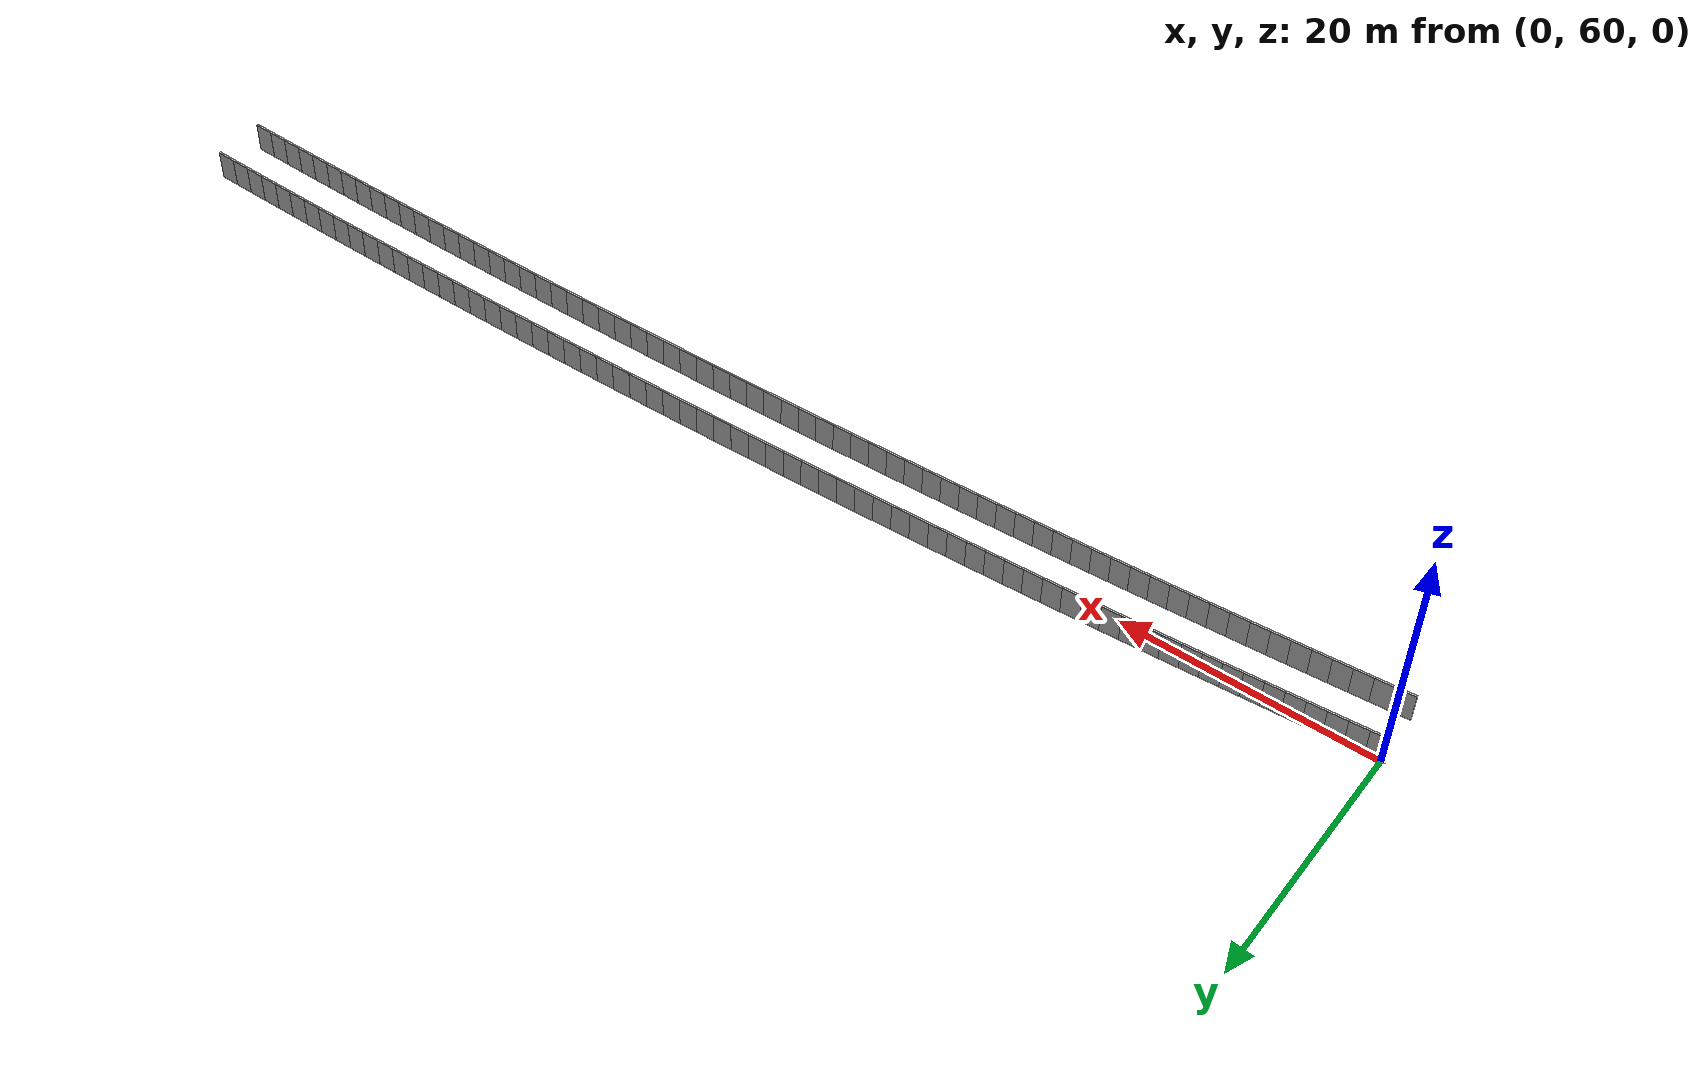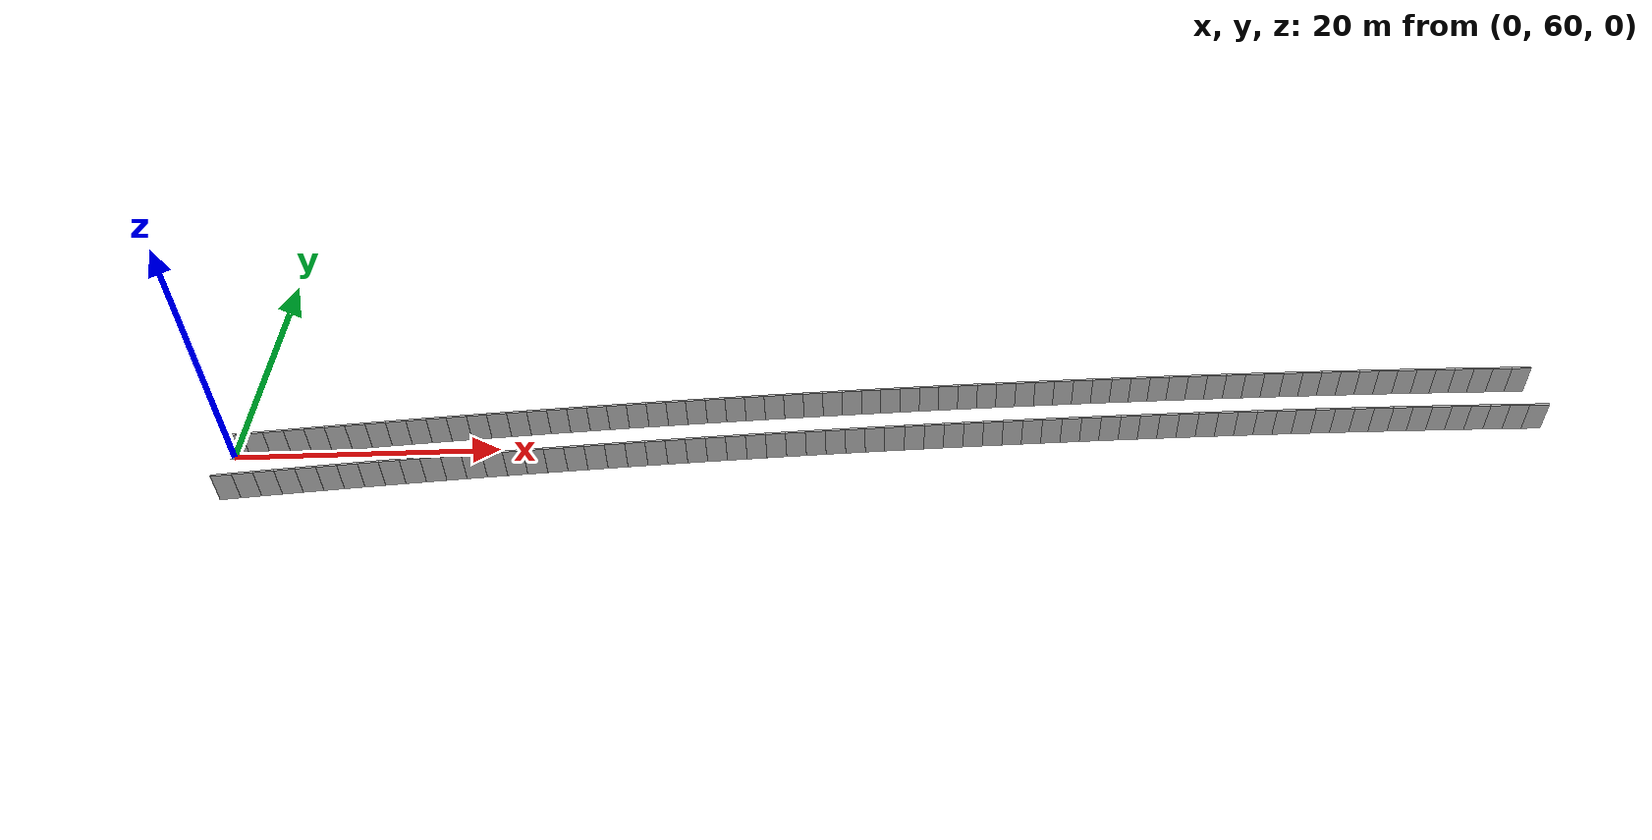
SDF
<sdf version="1.6">
 <model name="sps_1123">
  <static>1</static>
  <allow_auto_disable>0</allow_auto_disable>
  <link name="Wall2892">
   <collision name="collision"><geometry><box><size>1.49664 0.15 2.5</size></box></geometry></collision>
   <visual name="visual">
    <geometry><box><size>1.49664 0.15 2.5</size></box></geometry>
    <transparency>0.0</transparency>
   </visual>
   <pose>99.4662 59.1562 1.25 0 -0 3.12357</pose>
  </link>
  <link name="Wall2893">
   <collision name="collision"><geometry><box><size>1.49636 0.15 2.5</size></box></geometry></collision>
   <visual name="visual">
    <geometry><box><size>1.49636 0.15 2.5</size></box></geometry>
    <transparency>0.0</transparency>
   </visual>
   <pose>97.97 59.1821 1.25 0 -0 3.12503</pose>
  </link>
  <link name="Wall2894">
   <collision name="collision"><geometry><box><size>1.49657 0.15 2.5</size></box></geometry></collision>
   <visual name="visual">
    <geometry><box><size>1.49657 0.15 2.5</size></box></geometry>
    <transparency>0.0</transparency>
   </visual>
   <pose>96.4737 59.2057 1.25 0 -0 3.12662</pose>
  </link>
  <link name="Wall2895">
   <collision name="collision"><geometry><box><size>1.49659 0.15 2.5</size></box></geometry></collision>
   <visual name="visual">
    <geometry><box><size>1.49659 0.15 2.5</size></box></geometry>
    <transparency>0.0</transparency>
   </visual>
   <pose>94.9773 59.2268 1.25 0 -0 3.12834</pose>
  </link>
  <link name="Wall2896">
   <collision name="collision"><geometry><box><size>1.4965 0.15 2.5</size></box></geometry></collision>
   <visual name="visual">
    <geometry><box><size>1.4965 0.15 2.5</size></box></geometry>
    <transparency>0.0</transparency>
   </visual>
   <pose>93.4808 59.2455 1.25 0 -0 3.12985</pose>
  </link>
  <link name="Wall2897">
   <collision name="collision"><geometry><box><size>1.49648 0.15 2.5</size></box></geometry></collision>
   <visual name="visual">
    <geometry><box><size>1.49648 0.15 2.5</size></box></geometry>
    <transparency>0.0</transparency>
   </visual>
   <pose>91.9844 59.2619 1.25 0 -0 3.13144</pose>
  </link>
  <link name="Wall2898">
   <collision name="collision"><geometry><box><size>1.49645 0.15 2.5</size></box></geometry></collision>
   <visual name="visual">
    <geometry><box><size>1.49645 0.15 2.5</size></box></geometry>
    <transparency>0.0</transparency>
   </visual>
   <pose>90.488 59.2759 1.25 0 -0 3.13303</pose>
  </link>
  <link name="Wall2899">
   <collision name="collision"><geometry><box><size>1.49643 0.15 2.5</size></box></geometry></collision>
   <visual name="visual">
    <geometry><box><size>1.49643 0.15 2.5</size></box></geometry>
    <transparency>0.0</transparency>
   </visual>
   <pose>88.9916 59.2875 1.25 0 -0 3.13466</pose>
  </link>
  <link name="Wall2900">
   <collision name="collision"><geometry><box><size>1.4966 0.15 2.5</size></box></geometry></collision>
   <visual name="visual">
    <geometry><box><size>1.4966 0.15 2.5</size></box></geometry>
    <transparency>0.0</transparency>
   </visual>
   <pose>87.4951 59.2968 1.25 0 -0 3.13609</pose>
  </link>
  <link name="Wall2901">
   <collision name="collision"><geometry><box><size>1.49641 0.15 2.5</size></box></geometry></collision>
   <visual name="visual">
    <geometry><box><size>1.49641 0.15 2.5</size></box></geometry>
    <transparency>0.0</transparency>
   </visual>
   <pose>85.9986 59.3037 1.25 0 -0 3.13788</pose>
  </link>
  <link name="Wall2902">
   <collision name="collision"><geometry><box><size>1.4964 0.15 2.5</size></box></geometry></collision>
   <visual name="visual">
    <geometry><box><size>1.4964 0.15 2.5</size></box></geometry>
    <transparency>0.0</transparency>
   </visual>
   <pose>84.5023 59.3082 1.25 0 -0 3.13931</pose>
  </link>
  <link name="Wall2903">
   <collision name="collision"><geometry><box><size>1.49658 0.15 2.5</size></box></geometry></collision>
   <visual name="visual">
    <geometry><box><size>1.49658 0.15 2.5</size></box></geometry>
    <transparency>0.0</transparency>
   </visual>
   <pose>83.0058 59.3104 1.25 0 -0 3.14094</pose>
  </link>
  <link name="Wall2904">
   <collision name="collision"><geometry><box><size>1.4964 0.15 2.5</size></box></geometry></collision>
   <visual name="visual">
    <geometry><box><size>1.4964 0.15 2.5</size></box></geometry>
    <transparency>0.0</transparency>
   </visual>
   <pose>81.5093 59.3103 1.25 0 0 -3.14082</pose>
  </link>
  <link name="Wall2905">
   <collision name="collision"><geometry><box><size>1.49665 0.15 2.5</size></box></geometry></collision>
   <visual name="visual">
    <geometry><box><size>1.49665 0.15 2.5</size></box></geometry>
    <transparency>0.0</transparency>
   </visual>
   <pose>80.0127 59.3078 1.25 0 0 -3.13906</pose>
  </link>
  <link name="Wall2906">
   <collision name="collision"><geometry><box><size>1.49659 0.15 2.5</size></box></geometry></collision>
   <visual name="visual">
    <geometry><box><size>1.49659 0.15 2.5</size></box></geometry>
    <transparency>0.0</transparency>
   </visual>
   <pose>78.5161 59.3028 1.25 0 0 -3.13743</pose>
  </link>
  <link name="Wall2907">
   <collision name="collision"><geometry><box><size>1.49642 0.15 2.5</size></box></geometry></collision>
   <visual name="visual">
    <geometry><box><size>1.49642 0.15 2.5</size></box></geometry>
    <transparency>0.0</transparency>
   </visual>
   <pose>77.0196 59.2955 1.25 0 0 -3.13596</pose>
  </link>
  <link name="Wall2908">
   <collision name="collision"><geometry><box><size>1.49644 0.15 2.5</size></box></geometry></collision>
   <visual name="visual">
    <geometry><box><size>1.49644 0.15 2.5</size></box></geometry>
    <transparency>0.0</transparency>
   </visual>
   <pose>75.5232 59.2858 1.25 0 0 -3.13425</pose>
  </link>
  <link name="Wall2909">
   <collision name="collision"><geometry><box><size>1.49664 0.15 2.5</size></box></geometry></collision>
   <visual name="visual">
    <geometry><box><size>1.49664 0.15 2.5</size></box></geometry>
    <transparency>0.0</transparency>
   </visual>
   <pose>74.0268 59.2737 1.25 0 0 -3.13278</pose>
  </link>
  <link name="Wall2910">
   <collision name="collision"><geometry><box><size>1.49648 0.15 2.5</size></box></geometry></collision>
   <visual name="visual">
    <geometry><box><size>1.49648 0.15 2.5</size></box></geometry>
    <transparency>0.0</transparency>
   </visual>
   <pose>72.5303 59.2593 1.25 0 0 -3.13115</pose>
  </link>
  <link name="Wall2911">
   <collision name="collision"><geometry><box><size>1.49651 0.15 2.5</size></box></geometry></collision>
   <visual name="visual">
    <geometry><box><size>1.49651 0.15 2.5</size></box></geometry>
    <transparency>0.0</transparency>
   </visual>
   <pose>71.0339 59.2425 1.25 0 0 -3.12956</pose>
  </link>
  <link name="Wall2912">
   <collision name="collision"><geometry><box><size>1.49635 0.15 2.5</size></box></geometry></collision>
   <visual name="visual">
    <geometry><box><size>1.49635 0.15 2.5</size></box></geometry>
    <transparency>0.0</transparency>
   </visual>
   <pose>69.5376 59.2233 1.25 0 0 -3.12797</pose>
  </link>
  <link name="Wall2913">
   <collision name="collision"><geometry><box><size>1.49657 0.15 2.5</size></box></geometry></collision>
   <visual name="visual">
    <geometry><box><size>1.49657 0.15 2.5</size></box></geometry>
    <transparency>0.0</transparency>
   </visual>
   <pose>68.0413 59.2017 1.25 0 0 -3.12638</pose>
  </link>
  <link name="Wall2914">
   <collision name="collision"><geometry><box><size>1.49661 0.15 2.5</size></box></geometry></collision>
   <visual name="visual">
    <geometry><box><size>1.49661 0.15 2.5</size></box></geometry>
    <transparency>0.0</transparency>
   </visual>
   <pose>66.5449 59.1778 1.25 0 0 -3.12487</pose>
  </link>
  <link name="Wall2915">
   <collision name="collision"><geometry><box><size>1.49647 0.15 2.5</size></box></geometry></collision>
   <visual name="visual">
    <geometry><box><size>1.49647 0.15 2.5</size></box></geometry>
    <transparency>0.0</transparency>
   </visual>
   <pose>65.0485 59.1515 1.25 0 0 -3.12316</pose>
  </link>
  <link name="Wall2916">
   <collision name="collision"><geometry><box><size>1.49645 0.15 2.5</size></box></geometry></collision>
   <visual name="visual">
    <geometry><box><size>1.49645 0.15 2.5</size></box></geometry>
    <transparency>0.0</transparency>
   </visual>
   <pose>63.5524 59.1228 1.25 0 0 -3.12165</pose>
  </link>
  <link name="Wall2917">
   <collision name="collision"><geometry><box><size>1.49656 0.15 2.5</size></box></geometry></collision>
   <visual name="visual">
    <geometry><box><size>1.49656 0.15 2.5</size></box></geometry>
    <transparency>0.0</transparency>
   </visual>
   <pose>62.0562 59.0918 1.25 0 0 -3.1201</pose>
  </link>
  <link name="Wall2918">
   <collision name="collision"><geometry><box><size>1.49643 0.15 2.5</size></box></geometry></collision>
   <visual name="visual">
    <geometry><box><size>1.49643 0.15 2.5</size></box></geometry>
    <transparency>0.0</transparency>
   </visual>
   <pose>60.5601 59.0584 1.25 0 0 -3.11846</pose>
  </link>
  <link name="Wall2919">
   <collision name="collision"><geometry><box><size>1.49643 0.15 2.5</size></box></geometry></collision>
   <visual name="visual">
    <geometry><box><size>1.49643 0.15 2.5</size></box></geometry>
    <transparency>0.0</transparency>
   </visual>
   <pose>59.064 59.0226 1.25 0 0 -3.11687</pose>
  </link>
  <link name="Wall2920">
   <collision name="collision"><geometry><box><size>1.49655 0.15 2.5</size></box></geometry></collision>
   <visual name="visual">
    <geometry><box><size>1.49655 0.15 2.5</size></box></geometry>
    <transparency>0.0</transparency>
   </visual>
   <pose>57.568 58.9845 1.25 0 0 -3.11541</pose>
  </link>
  <link name="Wall2921">
   <collision name="collision"><geometry><box><size>1.49637 0.15 2.5</size></box></geometry></collision>
   <visual name="visual">
    <geometry><box><size>1.49637 0.15 2.5</size></box></geometry>
    <transparency>0.0</transparency>
   </visual>
   <pose>56.0721 58.9441 1.25 0 0 -3.11377</pose>
  </link>
  <link name="Wall2922">
   <collision name="collision"><geometry><box><size>1.49644 0.15 2.5</size></box></geometry></collision>
   <visual name="visual">
    <geometry><box><size>1.49644 0.15 2.5</size></box></geometry>
    <transparency>0.0</transparency>
   </visual>
   <pose>54.5763 58.9013 1.25 0 0 -3.11218</pose>
  </link>
  <link name="Wall2923">
   <collision name="collision"><geometry><box><size>1.49651 0.15 2.5</size></box></geometry></collision>
   <visual name="visual">
    <geometry><box><size>1.49651 0.15 2.5</size></box></geometry>
    <transparency>0.0</transparency>
   </visual>
   <pose>53.0806 58.856 1.25 0 0 -3.11047</pose>
  </link>
  <link name="Wall2924">
   <collision name="collision"><geometry><box><size>1.49659 0.15 2.5</size></box></geometry></collision>
   <visual name="visual">
    <geometry><box><size>1.49659 0.15 2.5</size></box></geometry>
    <transparency>0.0</transparency>
   </visual>
   <pose>51.5848 58.8083 1.25 0 0 -3.10896</pose>
  </link>
  <link name="Wall2925">
   <collision name="collision"><geometry><box><size>1.49673 0.15 2.5</size></box></geometry></collision>
   <visual name="visual">
    <geometry><box><size>1.49673 0.15 2.5</size></box></geometry>
    <transparency>0.0</transparency>
   </visual>
   <pose>50.089 58.7583 1.25 0 0 -3.10737</pose>
  </link>
  <link name="Wall2926">
   <collision name="collision"><geometry><box><size>1.49631 0.15 2.5</size></box></geometry></collision>
   <visual name="visual">
    <geometry><box><size>1.49631 0.15 2.5</size></box></geometry>
    <transparency>0.0</transparency>
   </visual>
   <pose>48.5933 58.706 1.25 0 0 -3.10589</pose>
  </link>
  <link name="Wall2927">
   <collision name="collision"><geometry><box><size>1.49647 0.15 2.5</size></box></geometry></collision>
   <visual name="visual">
    <geometry><box><size>1.49647 0.15 2.5</size></box></geometry>
    <transparency>0.0</transparency>
   </visual>
   <pose>47.098 58.6513 1.25 0 0 -3.10418</pose>
  </link>
  <link name="Wall2928">
   <collision name="collision"><geometry><box><size>1.49649 0.15 2.5</size></box></geometry></collision>
   <visual name="visual">
    <geometry><box><size>1.49649 0.15 2.5</size></box></geometry>
    <transparency>0.0</transparency>
   </visual>
   <pose>45.6026 58.5942 1.25 0 0 -3.10267</pose>
  </link>
  <link name="Wall2929">
   <collision name="collision"><geometry><box><size>1.49647 0.15 2.5</size></box></geometry></collision>
   <visual name="visual">
    <geometry><box><size>1.49647 0.15 2.5</size></box></geometry>
    <transparency>0.0</transparency>
   </visual>
   <pose>44.1073 58.5348 1.25 0 0 -3.10108</pose>
  </link>
  <link name="Wall2930">
   <collision name="collision"><geometry><box><size>1.4965 0.15 2.5</size></box></geometry></collision>
   <visual name="visual">
    <geometry><box><size>1.4965 0.15 2.5</size></box></geometry>
    <transparency>0.0</transparency>
   </visual>
   <pose>42.6121 58.473 1.25 0 0 -3.09949</pose>
  </link>
  <link name="Wall2931">
   <collision name="collision"><geometry><box><size>1.49642 0.15 2.5</size></box></geometry></collision>
   <visual name="visual">
    <geometry><box><size>1.49642 0.15 2.5</size></box></geometry>
    <transparency>0.0</transparency>
   </visual>
   <pose>41.117 58.4088 1.25 0 0 -3.0979</pose>
  </link>
  <link name="Wall2932">
   <collision name="collision"><geometry><box><size>1.49653 0.15 2.5</size></box></geometry></collision>
   <visual name="visual">
    <geometry><box><size>1.49653 0.15 2.5</size></box></geometry>
    <transparency>0.0</transparency>
   </visual>
   <pose>39.622 58.3422 1.25 0 0 -3.09627</pose>
  </link>
  <link name="Wall2933">
   <collision name="collision"><geometry><box><size>1.49664 0.15 2.5</size></box></geometry></collision>
   <visual name="visual">
    <geometry><box><size>1.49664 0.15 2.5</size></box></geometry>
    <transparency>0.0</transparency>
   </visual>
   <pose>38.127 58.2732 1.25 0 0 -3.09468</pose>
  </link>
  <link name="Wall2934">
   <collision name="collision"><geometry><box><size>1.49638 0.15 2.5</size></box></geometry></collision>
   <visual name="visual">
    <geometry><box><size>1.49638 0.15 2.5</size></box></geometry>
    <transparency>0.0</transparency>
   </visual>
   <pose>36.6322 58.2019 1.25 0 0 -3.09316</pose>
  </link>
  <link name="Wall2935">
   <collision name="collision"><geometry><box><size>1.49668 0.15 2.5</size></box></geometry></collision>
   <visual name="visual">
    <geometry><box><size>1.49668 0.15 2.5</size></box></geometry>
    <transparency>0.0</transparency>
   </visual>
   <pose>35.1374 58.1283 1.25 0 0 -3.09162</pose>
  </link>
  <link name="Wall2936">
   <collision name="collision"><geometry><box><size>1.49638 0.15 2.5</size></box></geometry></collision>
   <visual name="visual">
    <geometry><box><size>1.49638 0.15 2.5</size></box></geometry>
    <transparency>0.0</transparency>
   </visual>
   <pose>33.6428 58.0523 1.25 0 0 -3.08997</pose>
  </link>
  <link name="Wall2937">
   <collision name="collision"><geometry><box><size>1.4965 0.15 2.5</size></box></geometry></collision>
   <visual name="visual">
    <geometry><box><size>1.4965 0.15 2.5</size></box></geometry>
    <transparency>0.0</transparency>
   </visual>
   <pose>32.1485 57.9739 1.25 0 0 -3.08838</pose>
  </link>
  <link name="Wall2938">
   <collision name="collision"><geometry><box><size>1.49663 0.15 2.5</size></box></geometry></collision>
   <visual name="visual">
    <geometry><box><size>1.49663 0.15 2.5</size></box></geometry>
    <transparency>0.0</transparency>
   </visual>
   <pose>30.6541 57.8931 1.25 0 0 -3.08675</pose>
  </link>
  <link name="Wall2939">
   <collision name="collision"><geometry><box><size>1.4964 0.15 2.5</size></box></geometry></collision>
   <visual name="visual">
    <geometry><box><size>1.4964 0.15 2.5</size></box></geometry>
    <transparency>0.0</transparency>
   </visual>
   <pose>29.1599 57.8099 1.25 0 0 -3.08519</pose>
  </link>
  <link name="Wall2940">
   <collision name="collision"><geometry><box><size>1.49653 0.15 2.5</size></box></geometry></collision>
   <visual name="visual">
    <geometry><box><size>1.49653 0.15 2.5</size></box></geometry>
    <transparency>0.0</transparency>
   </visual>
   <pose>27.6659 57.7244 1.25 0 0 -3.08369</pose>
  </link>
  <link name="Wall2941">
   <collision name="collision"><geometry><box><size>1.49644 0.15 2.5</size></box></geometry></collision>
   <visual name="visual">
    <geometry><box><size>1.49644 0.15 2.5</size></box></geometry>
    <transparency>0.0</transparency>
   </visual>
   <pose>26.172 57.6365 1.25 0 0 -3.08193</pose>
  </link>
  <link name="Wall2942">
   <collision name="collision"><geometry><box><size>1.49662 0.15 2.5</size></box></geometry></collision>
   <visual name="visual">
    <geometry><box><size>1.49662 0.15 2.5</size></box></geometry>
    <transparency>0.0</transparency>
   </visual>
   <pose>24.6782 57.5463 1.25 0 0 -3.08063</pose>
  </link>
  <link name="Wall2943">
   <collision name="collision"><geometry><box><size>1.49635 0.15 2.5</size></box></geometry></collision>
   <visual name="visual">
    <geometry><box><size>1.49635 0.15 2.5</size></box></geometry>
    <transparency>0.0</transparency>
   </visual>
   <pose>23.1845 57.4538 1.25 0 0 -3.07886</pose>
  </link>
  <link name="Wall2944">
   <collision name="collision"><geometry><box><size>1.49644 0.15 2.5</size></box></geometry></collision>
   <visual name="visual">
    <geometry><box><size>1.49644 0.15 2.5</size></box></geometry>
    <transparency>0.0</transparency>
   </visual>
   <pose>21.6912 57.3588 1.25 0 0 -3.07727</pose>
  </link>
  <link name="Wall2945">
   <collision name="collision"><geometry><box><size>1.49648 0.15 2.5</size></box></geometry></collision>
   <visual name="visual">
    <geometry><box><size>1.49648 0.15 2.5</size></box></geometry>
    <transparency>0.0</transparency>
   </visual>
   <pose>20.1979 57.2614 1.25 0 0 -3.07568</pose>
  </link>
  <link name="Wall2946">
   <collision name="collision"><geometry><box><size>1.49663 0.15 2.5</size></box></geometry></collision>
   <visual name="visual">
    <geometry><box><size>1.49663 0.15 2.5</size></box></geometry>
    <transparency>0.0</transparency>
   </visual>
   <pose>18.7046 57.1617 1.25 0 0 -3.07417</pose>
  </link>
  <link name="Wall2947">
   <collision name="collision"><geometry><box><size>1.49637 0.15 2.5</size></box></geometry></collision>
   <visual name="visual">
    <geometry><box><size>1.49637 0.15 2.5</size></box></geometry>
    <transparency>0.0</transparency>
   </visual>
   <pose>17.2116 57.0596 1.25 0 0 -3.07244</pose>
  </link>
  <link name="Wall2948">
   <collision name="collision"><geometry><box><size>1.49653 0.15 2.5</size></box></geometry></collision>
   <visual name="visual">
    <geometry><box><size>1.49653 0.15 2.5</size></box></geometry>
    <transparency>0.0</transparency>
   </visual>
   <pose>15.7188 56.9551 1.25 0 0 -3.07098</pose>
  </link>
  <link name="Wall2949">
   <collision name="collision"><geometry><box><size>1.49672 0.15 2.5</size></box></geometry></collision>
   <visual name="visual">
    <geometry><box><size>1.49672 0.15 2.5</size></box></geometry>
    <transparency>0.0</transparency>
   </visual>
   <pose>14.226 56.8482 1.25 0 0 -3.06923</pose>
  </link>
  <link name="Wall2950">
   <collision name="collision"><geometry><box><size>1.49643 0.15 2.5</size></box></geometry></collision>
   <visual name="visual">
    <geometry><box><size>1.49643 0.15 2.5</size></box></geometry>
    <transparency>0.0</transparency>
   </visual>
   <pose>12.7335 56.739 1.25 0 0 -3.06791</pose>
  </link>
  <link name="Wall2951">
   <collision name="collision"><geometry><box><size>1.49643 0.15 2.5</size></box></geometry></collision>
   <visual name="visual">
    <geometry><box><size>1.49643 0.15 2.5</size></box></geometry>
    <transparency>0.0</transparency>
   </visual>
   <pose>11.2412 56.6276 1.25 0 0 -3.06627</pose>
  </link>
  <link name="Wall2952">
   <collision name="collision"><geometry><box><size>1.49643 0.15 2.5</size></box></geometry></collision>
   <visual name="visual">
    <geometry><box><size>1.49643 0.15 2.5</size></box></geometry>
    <transparency>0.0</transparency>
   </visual>
   <pose>9.74908 56.5138 1.25 0 0 -3.06467</pose>
  </link>
  <link name="Wall2953">
   <collision name="collision"><geometry><box><size>1.49644 0.15 2.5</size></box></geometry></collision>
   <visual name="visual">
    <geometry><box><size>1.49644 0.15 2.5</size></box></geometry>
    <transparency>0.0</transparency>
   </visual>
   <pose>8.25716 56.3976 1.25 0 0 -3.06304</pose>
  </link>
  <link name="Wall2954">
   <collision name="collision"><geometry><box><size>1.49664 0.15 2.5</size></box></geometry></collision>
   <visual name="visual">
    <geometry><box><size>1.49664 0.15 2.5</size></box></geometry>
    <transparency>0.0</transparency>
   </visual>
   <pose>6.76534 56.2789 1.25 0 0 -3.06133</pose>
  </link>
  <link name="Wall2955">
   <collision name="collision"><geometry><box><size>1.49657 0.15 2.5</size></box></geometry></collision>
   <visual name="visual">
    <geometry><box><size>1.49657 0.15 2.5</size></box></geometry>
    <transparency>0.0</transparency>
   </visual>
   <pose>5.27364 56.1578 1.25 0 0 -3.05985</pose>
  </link>
  <link name="Wall2956">
   <collision name="collision"><geometry><box><size>1.49639 0.15 2.5</size></box></geometry></collision>
   <visual name="visual">
    <geometry><box><size>1.49639 0.15 2.5</size></box></geometry>
    <transparency>0.0</transparency>
   </visual>
   <pose>3.78225 56.0345 1.25 0 0 -3.05837</pose>
  </link>
  <link name="Wall2957">
   <collision name="collision"><geometry><box><size>1.49661 0.15 2.5</size></box></geometry></collision>
   <visual name="visual">
    <geometry><box><size>1.49661 0.15 2.5</size></box></geometry>
    <transparency>0.0</transparency>
   </visual>
   <pose>2.29104 55.9088 1.25 0 0 -3.05662</pose>
  </link>
  <link name="Wall2958">
   <collision name="collision"><geometry><box><size>1.49637 0.15 2.5</size></box></geometry></collision>
   <visual name="visual">
    <geometry><box><size>1.49637 0.15 2.5</size></box></geometry>
    <transparency>0.0</transparency>
   </visual>
   <pose>0.800041 55.7807 1.25 0 0 -3.05514</pose>
  </link>
  <link name="Wall5503">
   <collision name="collision"><geometry><box><size>1.50305 0.15 2.5</size></box></geometry></collision>
   <visual name="visual">
    <geometry><box><size>1.50305 0.15 2.5</size></box></geometry>
    <transparency>0.0</transparency>
   </visual>
   <pose>99.5388 63.2951 1.25 0 -0 3.12352</pose>
  </link>
  <link name="Wall5504">
   <collision name="collision"><geometry><box><size>1.50301 0.15 2.5</size></box></geometry></collision>
   <visual name="visual">
    <geometry><box><size>1.50301 0.15 2.5</size></box></geometry>
    <transparency>0.0</transparency>
   </visual>
   <pose>98.036 63.3211 1.25 0 -0 3.12506</pose>
  </link>
  <link name="Wall5505">
   <collision name="collision"><geometry><box><size>1.50316 0.15 2.5</size></box></geometry></collision>
   <visual name="visual">
    <geometry><box><size>1.50316 0.15 2.5</size></box></geometry>
    <transparency>0.0</transparency>
   </visual>
   <pose>96.5331 63.3448 1.25 0 -0 3.12657</pose>
  </link>
  <link name="Wall5506">
   <collision name="collision"><geometry><box><size>1.50294 0.15 2.5</size></box></geometry></collision>
   <visual name="visual">
    <geometry><box><size>1.50294 0.15 2.5</size></box></geometry>
    <transparency>0.0</transparency>
   </visual>
   <pose>95.0302 63.3661 1.25 0 -0 3.12827</pose>
  </link>
  <link name="Wall5507">
   <collision name="collision"><geometry><box><size>1.50309 0.15 2.5</size></box></geometry></collision>
   <visual name="visual">
    <geometry><box><size>1.50309 0.15 2.5</size></box></geometry>
    <transparency>0.0</transparency>
   </visual>
   <pose>93.5273 63.3849 1.25 0 -0 3.1299</pose>
  </link>
  <link name="Wall5508">
   <collision name="collision"><geometry><box><size>1.50307 0.15 2.5</size></box></geometry></collision>
   <visual name="visual">
    <geometry><box><size>1.50307 0.15 2.5</size></box></geometry>
    <transparency>0.0</transparency>
   </visual>
   <pose>92.0243 63.4013 1.25 0 -0 3.13148</pose>
  </link>
  <link name="Wall5509">
   <collision name="collision"><geometry><box><size>1.50305 0.15 2.5</size></box></geometry></collision>
   <visual name="visual">
    <geometry><box><size>1.50305 0.15 2.5</size></box></geometry>
    <transparency>0.0</transparency>
   </visual>
   <pose>90.5214 63.4154 1.25 0 -0 3.13294</pose>
  </link>
  <link name="Wall5510">
   <collision name="collision"><geometry><box><size>1.50303 0.15 2.5</size></box></geometry></collision>
   <visual name="visual">
    <geometry><box><size>1.50303 0.15 2.5</size></box></geometry>
    <transparency>0.0</transparency>
   </visual>
   <pose>89.0184 63.4271 1.25 0 -0 3.13469</pose>
  </link>
  <link name="Wall5511">
   <collision name="collision"><geometry><box><size>1.50301 0.15 2.5</size></box></geometry></collision>
   <visual name="visual">
    <geometry><box><size>1.50301 0.15 2.5</size></box></geometry>
    <transparency>0.0</transparency>
   </visual>
   <pose>87.5154 63.4364 1.25 0 -0 3.13611</pose>
  </link>
  <link name="Wall5512">
   <collision name="collision"><geometry><box><size>1.50325 0.15 2.5</size></box></geometry></collision>
   <visual name="visual">
    <geometry><box><size>1.50325 0.15 2.5</size></box></geometry>
    <transparency>0.0</transparency>
   </visual>
   <pose>86.0123 63.4434 1.25 0 -0 3.13774</pose>
  </link>
  <link name="Wall5513">
   <collision name="collision"><geometry><box><size>1.50299 0.15 2.5</size></box></geometry></collision>
   <visual name="visual">
    <geometry><box><size>1.50299 0.15 2.5</size></box></geometry>
    <transparency>0.0</transparency>
   </visual>
   <pose>84.5091 63.448 1.25 0 -0 3.13932</pose>
  </link>
  <link name="Wall5514">
   <collision name="collision"><geometry><box><size>1.50299 0.15 2.5</size></box></geometry></collision>
   <visual name="visual">
    <geometry><box><size>1.50299 0.15 2.5</size></box></geometry>
    <transparency>0.0</transparency>
   </visual>
   <pose>83.0062 63.4502 1.25 0 -0 3.14094</pose>
  </link>
  <link name="Wall5515">
   <collision name="collision"><geometry><box><size>1.50324 0.15 2.5</size></box></geometry></collision>
   <visual name="visual">
    <geometry><box><size>1.50324 0.15 2.5</size></box></geometry>
    <transparency>0.0</transparency>
   </visual>
   <pose>81.503 63.4499 1.25 0 0 -3.14054</pose>
  </link>
  <link name="Wall5516">
   <collision name="collision"><geometry><box><size>1.503 0.15 2.5</size></box></geometry></collision>
   <visual name="visual">
    <geometry><box><size>1.503 0.15 2.5</size></box></geometry>
    <transparency>0.0</transparency>
   </visual>
   <pose>79.9999 63.4473 1.25 0 0 -3.1392</pose>
  </link>
  <link name="Wall5517">
   <collision name="collision"><geometry><box><size>1.503 0.15 2.5</size></box></geometry></collision>
   <visual name="visual">
    <geometry><box><size>1.503 0.15 2.5</size></box></geometry>
    <transparency>0.0</transparency>
   </visual>
   <pose>78.4969 63.4424 1.25 0 0 -3.13745</pose>
  </link>
  <link name="Wall5518">
   <collision name="collision"><geometry><box><size>1.5032 0.15 2.5</size></box></geometry></collision>
   <visual name="visual">
    <geometry><box><size>1.5032 0.15 2.5</size></box></geometry>
    <transparency>0.0</transparency>
   </visual>
   <pose>76.9939 63.435 1.25 0 0 -3.13587</pose>
  </link>
  <link name="Wall5519">
   <collision name="collision"><geometry><box><size>1.50303 0.15 2.5</size></box></geometry></collision>
   <visual name="visual">
    <geometry><box><size>1.50303 0.15 2.5</size></box></geometry>
    <transparency>0.0</transparency>
   </visual>
   <pose>75.4908 63.4252 1.25 0 0 -3.13428</pose>
  </link>
  <link name="Wall5520">
   <collision name="collision"><geometry><box><size>1.50311 0.15 2.5</size></box></geometry></collision>
   <visual name="visual">
    <geometry><box><size>1.50311 0.15 2.5</size></box></geometry>
    <transparency>0.0</transparency>
   </visual>
   <pose>73.9878 63.413 1.25 0 0 -3.13266</pose>
  </link>
  <link name="Wall5521">
   <collision name="collision"><geometry><box><size>1.50307 0.15 2.5</size></box></geometry></collision>
   <visual name="visual">
    <geometry><box><size>1.50307 0.15 2.5</size></box></geometry>
    <transparency>0.0</transparency>
   </visual>
   <pose>72.4847 63.3985 1.25 0 0 -3.13124</pose>
  </link>
  <link name="Wall5522">
   <collision name="collision"><geometry><box><size>1.5031 0.15 2.5</size></box></geometry></collision>
   <visual name="visual">
    <geometry><box><size>1.5031 0.15 2.5</size></box></geometry>
    <transparency>0.0</transparency>
   </visual>
   <pose>70.9817 63.3817 1.25 0 0 -3.12961</pose>
  </link>
  <link name="Wall5523">
   <collision name="collision"><geometry><box><size>1.50313 0.15 2.5</size></box></geometry></collision>
   <visual name="visual">
    <geometry><box><size>1.50313 0.15 2.5</size></box></geometry>
    <transparency>0.0</transparency>
   </visual>
   <pose>69.4788 63.3624 1.25 0 0 -3.12787</pose>
  </link>
  <link name="Wall5524">
   <collision name="collision"><geometry><box><size>1.50298 0.15 2.5</size></box></geometry></collision>
   <visual name="visual">
    <geometry><box><size>1.50298 0.15 2.5</size></box></geometry>
    <transparency>0.0</transparency>
   </visual>
   <pose>67.9759 63.3407 1.25 0 0 -3.12644</pose>
  </link>
  <link name="Wall5525">
   <collision name="collision"><geometry><box><size>1.5032 0.15 2.5</size></box></geometry></collision>
   <visual name="visual">
    <geometry><box><size>1.5032 0.15 2.5</size></box></geometry>
    <transparency>0.0</transparency>
   </visual>
   <pose>66.473 63.3167 1.25 0 0 -3.12482</pose>
  </link>
  <link name="Wall5526">
   <collision name="collision"><geometry><box><size>1.50306 0.15 2.5</size></box></geometry></collision>
   <visual name="visual">
    <geometry><box><size>1.50306 0.15 2.5</size></box></geometry>
    <transparency>0.0</transparency>
   </visual>
   <pose>64.9701 63.2903 1.25 0 0 -3.12324</pose>
  </link>
  <link name="Wall5527">
   <collision name="collision"><geometry><box><size>1.50311 0.15 2.5</size></box></geometry></collision>
   <visual name="visual">
    <geometry><box><size>1.50311 0.15 2.5</size></box></geometry>
    <transparency>0.0</transparency>
   </visual>
   <pose>63.4672 63.2615 1.25 0 0 -3.12161</pose>
  </link>
  <link name="Wall5528">
   <collision name="collision"><geometry><box><size>1.50315 0.15 2.5</size></box></geometry></collision>
   <visual name="visual">
    <geometry><box><size>1.50315 0.15 2.5</size></box></geometry>
    <transparency>0.0</transparency>
   </visual>
   <pose>61.9644 63.2304 1.25 0 0 -3.12019</pose>
  </link>
  <link name="Wall5529">
   <collision name="collision"><geometry><box><size>1.50297 0.15 2.5</size></box></geometry></collision>
   <visual name="visual">
    <geometry><box><size>1.50297 0.15 2.5</size></box></geometry>
    <transparency>0.0</transparency>
   </visual>
   <pose>60.4618 63.1969 1.25 0 0 -3.11844</pose>
  </link>
  <link name="Wall5530">
   <collision name="collision"><geometry><box><size>1.50309 0.15 2.5</size></box></geometry></collision>
   <visual name="visual">
    <geometry><box><size>1.50309 0.15 2.5</size></box></geometry>
    <transparency>0.0</transparency>
   </visual>
   <pose>58.9592 63.1609 1.25 0 0 -3.11682</pose>
  </link>
  <link name="Wall5531">
   <collision name="collision"><geometry><box><size>1.50308 0.15 2.5</size></box></geometry></collision>
   <visual name="visual">
    <geometry><box><size>1.50308 0.15 2.5</size></box></geometry>
    <transparency>0.0</transparency>
   </visual>
   <pose>57.4566 63.1226 1.25 0 0 -3.1154</pose>
  </link>
  <link name="Wall5532">
   <collision name="collision"><geometry><box><size>1.50302 0.15 2.5</size></box></geometry></collision>
   <visual name="visual">
    <geometry><box><size>1.50302 0.15 2.5</size></box></geometry>
    <transparency>0.0</transparency>
   </visual>
   <pose>55.9541 63.082 1.25 0 0 -3.11377</pose>
  </link>
  <link name="Wall5533">
   <collision name="collision"><geometry><box><size>1.50303 0.15 2.5</size></box></geometry></collision>
   <visual name="visual">
    <geometry><box><size>1.50303 0.15 2.5</size></box></geometry>
    <transparency>0.0</transparency>
   </visual>
   <pose>54.4517 63.039 1.25 0 0 -3.11219</pose>
  </link>
  <link name="Wall5534">
   <collision name="collision"><geometry><box><size>1.5031 0.15 2.5</size></box></geometry></collision>
   <visual name="visual">
    <geometry><box><size>1.5031 0.15 2.5</size></box></geometry>
    <transparency>0.0</transparency>
   </visual>
   <pose>52.9493 62.9936 1.25 0 0 -3.11056</pose>
  </link>
  <link name="Wall5535">
   <collision name="collision"><geometry><box><size>1.50324 0.15 2.5</size></box></geometry></collision>
   <visual name="visual">
    <geometry><box><size>1.50324 0.15 2.5</size></box></geometry>
    <transparency>0.0</transparency>
   </visual>
   <pose>51.4469 62.9458 1.25 0 0 -3.10898</pose>
  </link>
  <link name="Wall5536">
   <collision name="collision"><geometry><box><size>1.50308 0.15 2.5</size></box></geometry></collision>
   <visual name="visual">
    <geometry><box><size>1.50308 0.15 2.5</size></box></geometry>
    <transparency>0.0</transparency>
   </visual>
   <pose>49.9445 62.8955 1.25 0 0 -3.10727</pose>
  </link>
  <link name="Wall5537">
   <collision name="collision"><geometry><box><size>1.50315 0.15 2.5</size></box></geometry></collision>
   <visual name="visual">
    <geometry><box><size>1.50315 0.15 2.5</size></box></geometry>
    <transparency>0.0</transparency>
   </visual>
   <pose>48.4423 62.8429 1.25 0 0 -3.10593</pose>
  </link>
  <link name="Wall5538">
   <collision name="collision"><geometry><box><size>1.50307 0.15 2.5</size></box></geometry></collision>
   <visual name="visual">
    <geometry><box><size>1.50307 0.15 2.5</size></box></geometry>
    <transparency>0.0</transparency>
   </visual>
   <pose>46.9402 62.788 1.25 0 0 -3.10418</pose>
  </link>
  <link name="Wall5539">
   <collision name="collision"><geometry><box><size>1.5031 0.15 2.5</size></box></geometry></collision>
   <visual name="visual">
    <geometry><box><size>1.5031 0.15 2.5</size></box></geometry>
    <transparency>0.0</transparency>
   </visual>
   <pose>45.4383 62.7306 1.25 0 0 -3.1026</pose>
  </link>
  <link name="Wall5540">
   <collision name="collision"><geometry><box><size>1.50307 0.15 2.5</size></box></geometry></collision>
   <visual name="visual">
    <geometry><box><size>1.50307 0.15 2.5</size></box></geometry>
    <transparency>0.0</transparency>
   </visual>
   <pose>43.9364 62.6708 1.25 0 0 -3.10097</pose>
  </link>
  <link name="Wall5541">
   <collision name="collision"><geometry><box><size>1.50292 0.15 2.5</size></box></geometry></collision>
   <visual name="visual">
    <geometry><box><size>1.50292 0.15 2.5</size></box></geometry>
    <transparency>0.0</transparency>
   </visual>
   <pose>42.4347 62.6086 1.25 0 0 -3.09943</pose>
  </link>
  <link name="Wall5542">
   <collision name="collision"><geometry><box><size>1.50326 0.15 2.5</size></box></geometry></collision>
   <visual name="visual">
    <geometry><box><size>1.50326 0.15 2.5</size></box></geometry>
    <transparency>0.0</transparency>
   </visual>
   <pose>40.9329 62.5441 1.25 0 0 -3.09793</pose>
  </link>
  <link name="Wall5543">
   <collision name="collision"><geometry><box><size>1.50288 0.15 2.5</size></box></geometry></collision>
   <visual name="visual">
    <geometry><box><size>1.50288 0.15 2.5</size></box></geometry>
    <transparency>0.0</transparency>
   </visual>
   <pose>39.4314 62.4773 1.25 0 0 -3.09634</pose>
  </link>
  <link name="Wall5544">
   <collision name="collision"><geometry><box><size>1.5033 0.15 2.5</size></box></geometry></collision>
   <visual name="visual">
    <geometry><box><size>1.5033 0.15 2.5</size></box></geometry>
    <transparency>0.0</transparency>
   </visual>
   <pose>37.9299 62.4081 1.25 0 0 -3.09472</pose>
  </link>
  <link name="Wall5545">
   <collision name="collision"><geometry><box><size>1.50292 0.15 2.5</size></box></geometry></collision>
   <visual name="visual">
    <geometry><box><size>1.50292 0.15 2.5</size></box></geometry>
    <transparency>0.0</transparency>
   </visual>
   <pose>36.4285 62.3365 1.25 0 0 -3.09312</pose>
  </link>
  <link name="Wall5546">
   <collision name="collision"><geometry><box><size>1.5031 0.15 2.5</size></box></geometry></collision>
   <visual name="visual">
    <geometry><box><size>1.5031 0.15 2.5</size></box></geometry>
    <transparency>0.0</transparency>
   </visual>
   <pose>34.9273 62.2625 1.25 0 0 -3.09155</pose>
  </link>
  <link name="Wall5547">
   <collision name="collision"><geometry><box><size>1.50321 0.15 2.5</size></box></geometry></collision>
   <visual name="visual">
    <geometry><box><size>1.50321 0.15 2.5</size></box></geometry>
    <transparency>0.0</transparency>
   </visual>
   <pose>33.426 62.1862 1.25 0 0 -3.09009</pose>
  </link>
  <link name="Wall5548">
   <collision name="collision"><geometry><box><size>1.50292 0.15 2.5</size></box></geometry></collision>
   <visual name="visual">
    <geometry><box><size>1.50292 0.15 2.5</size></box></geometry>
    <transparency>0.0</transparency>
   </visual>
   <pose>31.925 62.1075 1.25 0 0 -3.08837</pose>
  </link>
  <link name="Wall5549">
   <collision name="collision"><geometry><box><size>1.50304 0.15 2.5</size></box></geometry></collision>
   <visual name="visual">
    <geometry><box><size>1.50304 0.15 2.5</size></box></geometry>
    <transparency>0.0</transparency>
   </visual>
   <pose>30.4242 62.0264 1.25 0 0 -3.08687</pose>
  </link>
  <link name="Wall5550">
   <collision name="collision"><geometry><box><size>1.50319 0.15 2.5</size></box></geometry></collision>
   <visual name="visual">
    <geometry><box><size>1.50319 0.15 2.5</size></box></geometry>
    <transparency>0.0</transparency>
   </visual>
   <pose>28.9235 61.9429 1.25 0 0 -3.08512</pose>
  </link>
  <link name="Wall5551">
   <collision name="collision"><geometry><box><size>1.50313 0.15 2.5</size></box></geometry></collision>
   <visual name="visual">
    <geometry><box><size>1.50313 0.15 2.5</size></box></geometry>
    <transparency>0.0</transparency>
   </visual>
   <pose>27.4228 61.857 1.25 0 0 -3.0837</pose>
  </link>
  <link name="Wall5552">
   <collision name="collision"><geometry><box><size>1.50304 0.15 2.5</size></box></geometry></collision>
   <visual name="visual">
    <geometry><box><size>1.50304 0.15 2.5</size></box></geometry>
    <transparency>0.0</transparency>
   </visual>
   <pose>25.9223 61.7687 1.25 0 0 -3.08195</pose>
  </link>
  <link name="Wall5553">
   <collision name="collision"><geometry><box><size>1.50305 0.15 2.5</size></box></geometry></collision>
   <visual name="visual">
    <geometry><box><size>1.50305 0.15 2.5</size></box></geometry>
    <transparency>0.0</transparency>
   </visual>
   <pose>24.422 61.678 1.25 0 0 -3.08048</pose>
  </link>
  <link name="Wall5554">
   <collision name="collision"><geometry><box><size>1.50315 0.15 2.5</size></box></geometry></collision>
   <visual name="visual">
    <geometry><box><size>1.50315 0.15 2.5</size></box></geometry>
    <transparency>0.0</transparency>
   </visual>
   <pose>22.9217 61.5849 1.25 0 0 -3.07874</pose>
  </link>
  <link name="Wall5555">
   <collision name="collision"><geometry><box><size>1.5031 0.15 2.5</size></box></geometry></collision>
   <visual name="visual">
    <geometry><box><size>1.5031 0.15 2.5</size></box></geometry>
    <transparency>0.0</transparency>
   </visual>
   <pose>21.4217 61.4894 1.25 0 0 -3.07731</pose>
  </link>
  <link name="Wall5556">
   <collision name="collision"><geometry><box><size>1.50307 0.15 2.5</size></box></geometry></collision>
   <visual name="visual">
    <geometry><box><size>1.50307 0.15 2.5</size></box></geometry>
    <transparency>0.0</transparency>
   </visual>
   <pose>19.9217 61.3917 1.25 0 0 -3.0758</pose>
  </link>
  <link name="Wall5557">
   <collision name="collision"><geometry><box><size>1.50318 0.15 2.5</size></box></geometry></collision>
   <visual name="visual">
    <geometry><box><size>1.50318 0.15 2.5</size></box></geometry>
    <transparency>0.0</transparency>
   </visual>
   <pose>18.422 61.2916 1.25 0 0 -3.0741</pose>
  </link>
  <link name="Wall5558">
   <collision name="collision"><geometry><box><size>1.50304 0.15 2.5</size></box></geometry></collision>
   <visual name="visual">
    <geometry><box><size>1.50304 0.15 2.5</size></box></geometry>
    <transparency>0.0</transparency>
   </visual>
   <pose>16.9224 61.189 1.25 0 0 -3.07246</pose>
  </link>
  <link name="Wall5559">
   <collision name="collision"><geometry><box><size>1.50313 0.15 2.5</size></box></geometry></collision>
   <visual name="visual">
    <geometry><box><size>1.50313 0.15 2.5</size></box></geometry>
    <transparency>0.0</transparency>
   </visual>
   <pose>15.4229 61.0841 1.25 0 0 -3.071</pose>
  </link>
  <link name="Wall5560">
   <collision name="collision"><geometry><box><size>1.50312 0.15 2.5</size></box></geometry></collision>
   <visual name="visual">
    <geometry><box><size>1.50312 0.15 2.5</size></box></geometry>
    <transparency>0.0</transparency>
   </visual>
   <pose>13.9236 60.9769 1.25 0 0 -3.06941</pose>
  </link>
  <link name="Wall5561">
   <collision name="collision"><geometry><box><size>1.50288 0.15 2.5</size></box></geometry></collision>
   <visual name="visual">
    <geometry><box><size>1.50288 0.15 2.5</size></box></geometry>
    <transparency>0.0</transparency>
   </visual>
   <pose>12.4246 60.8672 1.25 0 0 -3.06769</pose>
  </link>
  <link name="Wall5562">
   <collision name="collision"><geometry><box><size>1.50328 0.15 2.5</size></box></geometry></collision>
   <visual name="visual">
    <geometry><box><size>1.50328 0.15 2.5</size></box></geometry>
    <transparency>0.0</transparency>
   </visual>
   <pose>10.9257 60.7552 1.25 0 0 -3.06633</pose>
  </link>
  <link name="Wall5563">
   <collision name="collision"><geometry><box><size>1.50305 0.15 2.5</size></box></geometry></collision>
   <visual name="visual">
    <geometry><box><size>1.50305 0.15 2.5</size></box></geometry>
    <transparency>0.0</transparency>
   </visual>
   <pose>9.42693 60.6409 1.25 0 0 -3.06461</pose>
  </link>
  <link name="Wall5564">
   <collision name="collision"><geometry><box><size>1.50299 0.15 2.5</size></box></geometry></collision>
   <visual name="visual">
    <geometry><box><size>1.50299 0.15 2.5</size></box></geometry>
    <transparency>0.0</transparency>
   </visual>
   <pose>7.92846 60.5241 1.25 0 0 -3.06301</pose>
  </link>
  <link name="Wall5565">
   <collision name="collision"><geometry><box><size>1.50306 0.15 2.5</size></box></geometry></collision>
   <visual name="visual">
    <geometry><box><size>1.50306 0.15 2.5</size></box></geometry>
    <transparency>0.0</transparency>
   </visual>
   <pose>6.43017 60.4049 1.25 0 0 -3.06139</pose>
  </link>
  <link name="Wall5566">
   <collision name="collision"><geometry><box><size>1.50301 0.15 2.5</size></box></geometry></collision>
   <visual name="visual">
    <geometry><box><size>1.50301 0.15 2.5</size></box></geometry>
    <transparency>0.0</transparency>
   </visual>
   <pose>4.93206 60.2833 1.25 0 0 -3.0598</pose>
  </link>
  <link name="Wall5567">
   <collision name="collision"><geometry><box><size>1.50319 0.15 2.5</size></box></geometry></collision>
   <visual name="visual">
    <geometry><box><size>1.50319 0.15 2.5</size></box></geometry>
    <transparency>0.0</transparency>
   </visual>
   <pose>3.43407 60.1594 1.25 0 0 -3.05834</pose>
  </link>
  <link name="Wall5568">
   <collision name="collision"><geometry><box><size>1.50303 0.15 2.5</size></box></geometry></collision>
   <visual name="visual">
    <geometry><box><size>1.50303 0.15 2.5</size></box></geometry>
    <transparency>0.0</transparency>
   </visual>
   <pose>1.93627 60.0332 1.25 0 0 -3.05674</pose>
  </link>
  <link name="Wall5569">
   <collision name="collision"><geometry><box><size>1.50299 0.15 2.5</size></box></geometry></collision>
   <visual name="visual">
    <geometry><box><size>1.50299 0.15 2.5</size></box></geometry>
    <transparency>0.0</transparency>
   </visual>
   <pose>0.438773 59.9046 1.25 0 0 -3.05511</pose>
  </link>
 </model>
</sdf>
